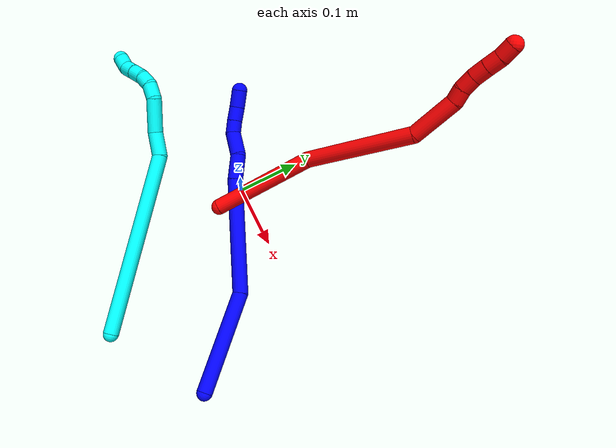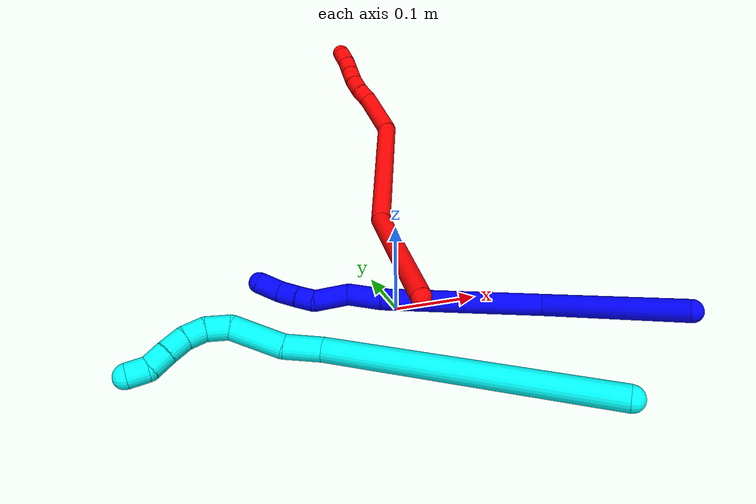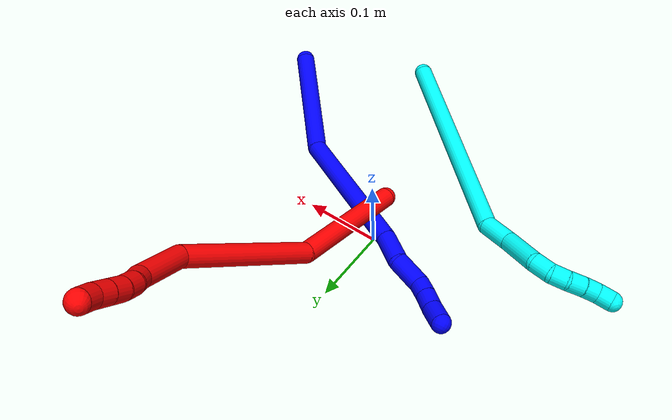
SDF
<sdf version="1.7">
 <world name="default">
  <model name="photoneo_s_sensor">
   <static>1</static>
   <pose>0 0 2 1.57079 1.57079 3.14159</pose>
   <link name="link">
    <inertial><mass>0.1</mass></inertial>
    <sensor name="sensor" type="depth">
     <update_rate>30</update_rate>
     <camera>
      <horizontal_fov>1.22</horizontal_fov>
      <image><width>1920</width><height>1200</height><format>B8G8R8</format></image>
      <clip><near>0.1</near><far>4</far></clip>
      <depth_camera><output>points</output></depth_camera>
     </camera>
     <plugin name="camera_plugin" filename="libgazebo_ros_depth_camera.so">
      <baseline>0.2</baseline>
      <alwaysOn>1</alwaysOn>
      <updateRate>0.0</updateRate>
      <cameraName>camera_ir</cameraName>
      <imageTopicName>/camera/color/image_raw</imageTopicName>
      <cameraInfoTopicName>/camera/color/camera_info</cameraInfoTopicName>
      <depthImageTopicName>/camera/depth/image_raw</depthImageTopicName>
      <depthImageCameraInfoTopicName>/camera/depth/camera_info</depthImageCameraInfoTopicName>
      <pointCloudTopicName>/camera/depth/points</pointCloudTopicName>
      <frameName>fr_optical</frameName>
      <pointCloudCutoff>0.1</pointCloudCutoff>
      <pointCloudCutoffMax>2.0</pointCloudCutoffMax>
      <distortionK1>0</distortionK1>
      <distortionK2>0</distortionK2>
      <distortionK3>0</distortionK3>
      <distortionT1>0</distortionT1>
      <distortionT2>0</distortionT2>
      <CxPrime>0</CxPrime>
      <Cx>0</Cx>
      <Cy>0</Cy>
      <focalLength>0</focalLength>
      <hackBaseline>0</hackBaseline>
     </plugin>
    </sensor>
   </link>
  </model>
  <model name="bin">
   <static>1</static>
   <link name="bottom">
    <collision name="collision-bottom">
     <pose>0 0 -0.01 0 -0 0</pose>
     <geometry><box><size>0.8 0.6 0.02</size></box></geometry>
     <surface>
      <friction><ode><mu>100</mu><mu2>100</mu2></ode></friction>
      <contact><collide_bitmask>65535</collide_bitmask></contact>
     </surface>
    </collision>
   </link>
   <link name="west_wall">
    <collision name="collision-west_wall">
     <pose>-0.41 0 0.1 0 -0 0</pose>
     <geometry><box><size>0.02 0.6 0.2</size></box></geometry>
     <surface>
      <friction><ode><mu>100</mu><mu2>100</mu2></ode></friction>
      <contact><collide_bitmask>65535</collide_bitmask></contact>
     </surface>
    </collision>
   </link>
   <link name="east_wall">
    <collision name="collision-east_wall">
     <pose>0.41 0 0.1 0 -0 0</pose>
     <geometry><box><size>0.02 0.6 0.2</size></box></geometry>
     <surface>
      <friction><ode><mu>100</mu><mu2>100</mu2></ode></friction>
      <contact><collide_bitmask>65535</collide_bitmask></contact>
     </surface>
    </collision>
   </link>
   <link name="south_wall">
    <collision name="collision-south_wall">
     <pose>0 -0.31 0.1 0 -0 0</pose>
     <geometry><box><size>0.8 0.02 0.2</size></box></geometry>
     <surface>
      <friction><ode><mu>100</mu><mu2>100</mu2></ode></friction>
      <contact><collide_bitmask>65535</collide_bitmask></contact>
     </surface>
    </collision>
   </link>
   <link name="north_wall">
    <collision name="collision-north_wall">
     <pose>0 0.31 0.1 0 -0 0</pose>
     <geometry><box><size>0.8 0.02 0.2</size></box></geometry>
     <surface>
      <friction><ode><mu>100</mu><mu2>100</mu2></ode></friction>
      <contact><collide_bitmask>65535</collide_bitmask></contact>
     </surface>
    </collision>
   </link>
  </model>
  <model name="1">
   <static>0</static>
   <link name="1">
    <collision name="collision-cylinder-e_1_1_4">
     <pose>-0.051967 -0.001839 0.062502 0.029412 -0.693413 -0.010627</pose>
     <geometry><cylinder><radius>0.0125</radius><length>0.162609</length></cylinder></geometry>
     <surface>
      <friction><ode><mu>1.16</mu><mu2>1.16</mu2><slip1>0</slip1><slip2>0</slip2></ode></friction>
      <contact><ode><kp>1e+06</kp><kd>1</kd><max_vel>0</max_vel><min_depth>0.001</min_depth></ode></contact>
     </surface>
    </collision>
    <visual name="visual-cylinder-e_1_1_4">
     <pose>-0.051967 -0.001839 0.062502 0.029412 -0.693413 -0.010627</pose>
     <geometry><cylinder><radius>0.0125</radius><length>0.162609</length></cylinder></geometry>
     <material><ambient>0 0 1 1</ambient></material>
    </visual>
    <collision name="collision-cylinder-e_2_4_5">
     <pose>-0.186599 1.3e-05 0.166472 -0.088771 -1.10425 0.054708</pose>
     <geometry><cylinder><radius>0.0125</radius><length>0.185114</length></cylinder></geometry>
     <surface>
      <friction><ode><mu>1.16</mu><mu2>1.16</mu2><slip1>0</slip1><slip2>0</slip2></ode></friction>
      <contact><ode><kp>1e+06</kp><kd>1</kd><max_vel>0</max_vel><min_depth>0.001</min_depth></ode></contact>
     </surface>
    </collision>
    <visual name="visual-cylinder-e_2_4_5">
     <pose>-0.186599 1.3e-05 0.166472 -0.088771 -1.10425 0.054708</pose>
     <geometry><cylinder><radius>0.0125</radius><length>0.185114</length></cylinder></geometry>
     <material><ambient>0 0 1 1</ambient></material>
    </visual>
    <collision name="collision-cylinder-e_3_5_6">
     <pose>-0.286252 0.002013 0.219151 0.149737 -0.982278 -0.080194</pose>
     <geometry><cylinder><radius>0.0125</radius><length>0.040847</length></cylinder></geometry>
     <surface>
      <friction><ode><mu>1.16</mu><mu2>1.16</mu2><slip1>0</slip1><slip2>0</slip2></ode></friction>
      <contact><ode><kp>1e+06</kp><kd>1</kd><max_vel>0</max_vel><min_depth>0.001</min_depth></ode></contact>
     </surface>
    </collision>
    <visual name="visual-cylinder-e_3_5_6">
     <pose>-0.286252 0.002013 0.219151 0.149737 -0.982278 -0.080194</pose>
     <geometry><cylinder><radius>0.0125</radius><length>0.040847</length></cylinder></geometry>
     <material><ambient>0 0 1 1</ambient></material>
    </visual>
    <collision name="collision-cylinder-e_4_6_7">
     <pose>-0.320891 0.005747 0.237857 -0.626591 -1.08798 0.387008</pose>
     <geometry><cylinder><radius>0.0125</radius><length>0.039858</length></cylinder></geometry>
     <surface>
      <friction><ode><mu>1.16</mu><mu2>1.16</mu2><slip1>0</slip1><slip2>0</slip2></ode></friction>
      <contact><ode><kp>1e+06</kp><kd>1</kd><max_vel>0</max_vel><min_depth>0.001</min_depth></ode></contact>
     </surface>
    </collision>
    <visual name="visual-cylinder-e_4_6_7">
     <pose>-0.320891 0.005747 0.237857 -0.626591 -1.08798 0.387008</pose>
     <geometry><cylinder><radius>0.0125</radius><length>0.039858</length></cylinder></geometry>
     <material><ambient>0 0 1 1</ambient></material>
    </visual>
    <collision name="collision-cylinder-e_5_7_8">
     <pose>-0.347337 0.009443 0.250601 0.318325 -1.00977 -0.176963</pose>
     <geometry><cylinder><radius>0.0125</radius><length>0.020776</length></cylinder></geometry>
     <surface>
      <friction><ode><mu>1.16</mu><mu2>1.16</mu2><slip1>0</slip1><slip2>0</slip2></ode></friction>
      <contact><ode><kp>1e+06</kp><kd>1</kd><max_vel>0</max_vel><min_depth>0.001</min_depth></ode></contact>
     </surface>
    </collision>
    <visual name="visual-cylinder-e_5_7_8">
     <pose>-0.347337 0.009443 0.250601 0.318325 -1.00977 -0.176963</pose>
     <geometry><cylinder><radius>0.0125</radius><length>0.020776</length></cylinder></geometry>
     <material><ambient>0 0 1 1</ambient></material>
    </visual>
    <collision name="collision-cylinder-e_6_8_9">
     <pose>-0.36529 0.005423 0.261981 0.357511 -0.950277 -0.185372</pose>
     <geometry><cylinder><radius>0.0125</radius><length>0.022511</length></cylinder></geometry>
     <surface>
      <friction><ode><mu>1.16</mu><mu2>1.16</mu2><slip1>0</slip1><slip2>0</slip2></ode></friction>
      <contact><ode><kp>1e+06</kp><kd>1</kd><max_vel>0</max_vel><min_depth>0.001</min_depth></ode></contact>
     </surface>
    </collision>
    <visual name="visual-cylinder-e_6_8_9">
     <pose>-0.36529 0.005423 0.261981 0.357511 -0.950277 -0.185372</pose>
     <geometry><cylinder><radius>0.0125</radius><length>0.022511</length></cylinder></geometry>
     <material><ambient>0 0 1 1</ambient></material>
    </visual>
    <collision name="collision-cylinder-e_7_9_2">
     <pose>-0.386334 -0.001338 0.274334 0.622998 -0.998262 -0.347532</pose>
     <geometry><cylinder><radius>0.0125</radius><length>0.028286</length></cylinder></geometry>
     <surface>
      <friction><ode><mu>1.16</mu><mu2>1.16</mu2><slip1>0</slip1><slip2>0</slip2></ode></friction>
      <contact><ode><kp>1e+06</kp><kd>1</kd><max_vel>0</max_vel><min_depth>0.001</min_depth></ode></contact>
     </surface>
    </collision>
    <visual name="visual-cylinder-e_7_9_2">
     <pose>-0.386334 -0.001338 0.274334 0.622998 -0.998262 -0.347532</pose>
     <geometry><cylinder><radius>0.0125</radius><length>0.028286</length></cylinder></geometry>
     <material><ambient>0 0 1 1</ambient></material>
    </visual>
    <collision name="collision-sphere-2">
     <pose>-0.398222 -0.005809 0.280557 0 -0 0</pose>
     <geometry><sphere><radius>0.0125</radius></sphere></geometry>
     <surface>
      <friction><ode><mu>1.16</mu><mu2>1.16</mu2><slip1>0</slip1><slip2>0</slip2></ode></friction>
      <contact><ode><kp>1e+06</kp><kd>1</kd><max_vel>0</max_vel><min_depth>0.001</min_depth></ode></contact>
     </surface>
    </collision>
    <visual name="visual-sphere-2">
     <pose>-0.398222 -0.005809 0.280557 0 -0 0</pose>
     <geometry><sphere><radius>0.0125</radius></sphere></geometry>
     <material><ambient>0 0 1 1</ambient></material>
    </visual>
    <collision name="collision-sphere-9">
     <pose>-0.374447 0.003133 0.268111 0 -0 0</pose>
     <geometry><sphere><radius>0.0125</radius></sphere></geometry>
     <surface>
      <friction><ode><mu>1.16</mu><mu2>1.16</mu2><slip1>0</slip1><slip2>0</slip2></ode></friction>
      <contact><ode><kp>1e+06</kp><kd>1</kd><max_vel>0</max_vel><min_depth>0.001</min_depth></ode></contact>
     </surface>
    </collision>
    <visual name="visual-sphere-9">
     <pose>-0.374447 0.003133 0.268111 0 -0 0</pose>
     <geometry><sphere><radius>0.0125</radius></sphere></geometry>
     <material><ambient>0 0 1 1</ambient></material>
    </visual>
    <collision name="collision-sphere-4">
     <pose>-0.103934 -0.003678 0.125003 0 -0 0</pose>
     <geometry><sphere><radius>0.0125</radius></sphere></geometry>
     <surface>
      <friction><ode><mu>1.16</mu><mu2>1.16</mu2><slip1>0</slip1><slip2>0</slip2></ode></friction>
      <contact><ode><kp>1e+06</kp><kd>1</kd><max_vel>0</max_vel><min_depth>0.001</min_depth></ode></contact>
     </surface>
    </collision>
    <visual name="visual-sphere-4">
     <pose>-0.103934 -0.003678 0.125003 0 -0 0</pose>
     <geometry><sphere><radius>0.0125</radius></sphere></geometry>
     <material><ambient>0 0 1 1</ambient></material>
    </visual>
    <collision name="collision-sphere-1">
     <geometry><sphere><radius>0.0125</radius></sphere></geometry>
     <surface>
      <friction><ode><mu>1.16</mu><mu2>1.16</mu2><slip1>0</slip1><slip2>0</slip2></ode></friction>
      <contact><ode><kp>1e+06</kp><kd>1</kd><max_vel>0</max_vel><min_depth>0.001</min_depth></ode></contact>
     </surface>
    </collision>
    <visual name="visual-sphere-1">
     <geometry><sphere><radius>0.0125</radius></sphere></geometry>
     <material><ambient>0 0 1 1</ambient></material>
    </visual>
    <collision name="collision-sphere-8">
     <pose>-0.356133 0.007713 0.25585 0 -0 0</pose>
     <geometry><sphere><radius>0.0125</radius></sphere></geometry>
     <surface>
      <friction><ode><mu>1.16</mu><mu2>1.16</mu2><slip1>0</slip1><slip2>0</slip2></ode></friction>
      <contact><ode><kp>1e+06</kp><kd>1</kd><max_vel>0</max_vel><min_depth>0.001</min_depth></ode></contact>
     </surface>
    </collision>
    <visual name="visual-sphere-8">
     <pose>-0.356133 0.007713 0.25585 0 -0 0</pose>
     <geometry><sphere><radius>0.0125</radius></sphere></geometry>
     <material><ambient>0 0 1 1</ambient></material>
    </visual>
    <collision name="collision-sphere-5">
     <pose>-0.269265 0.003704 0.20794 0 -0 0</pose>
     <geometry><sphere><radius>0.0125</radius></sphere></geometry>
     <surface>
      <friction><ode><mu>1.16</mu><mu2>1.16</mu2><slip1>0</slip1><slip2>0</slip2></ode></friction>
      <contact><ode><kp>1e+06</kp><kd>1</kd><max_vel>0</max_vel><min_depth>0.001</min_depth></ode></contact>
     </surface>
    </collision>
    <visual name="visual-sphere-5">
     <pose>-0.269265 0.003704 0.20794 0 -0 0</pose>
     <geometry><sphere><radius>0.0125</radius></sphere></geometry>
     <material><ambient>0 0 1 1</ambient></material>
    </visual>
    <collision name="collision-sphere-6">
     <pose>-0.30324 0.000322 0.230362 0 -0 0</pose>
     <geometry><sphere><radius>0.0125</radius></sphere></geometry>
     <surface>
      <friction><ode><mu>1.16</mu><mu2>1.16</mu2><slip1>0</slip1><slip2>0</slip2></ode></friction>
      <contact><ode><kp>1e+06</kp><kd>1</kd><max_vel>0</max_vel><min_depth>0.001</min_depth></ode></contact>
     </surface>
    </collision>
    <visual name="visual-sphere-6">
     <pose>-0.30324 0.000322 0.230362 0 -0 0</pose>
     <geometry><sphere><radius>0.0125</radius></sphere></geometry>
     <material><ambient>0 0 1 1</ambient></material>
    </visual>
    <collision name="collision-sphere-7">
     <pose>-0.338542 0.011173 0.245352 0 -0 0</pose>
     <geometry><sphere><radius>0.0125</radius></sphere></geometry>
     <surface>
      <friction><ode><mu>1.16</mu><mu2>1.16</mu2><slip1>0</slip1><slip2>0</slip2></ode></friction>
      <contact><ode><kp>1e+06</kp><kd>1</kd><max_vel>0</max_vel><min_depth>0.001</min_depth></ode></contact>
     </surface>
    </collision>
    <visual name="visual-sphere-7">
     <pose>-0.338542 0.011173 0.245352 0 -0 0</pose>
     <geometry><sphere><radius>0.0125</radius></sphere></geometry>
     <material><ambient>0 0 1 1</ambient></material>
    </visual>
    <inertial>
     <pose>-0.187684 0.00059 0.15655 0 -0 0</pose>
     <mass>0.5</mass>
     <inertia>
      <ixx>0.000511</ixx>
      <ixy>0</ixy>
      <ixz>0</ixz>
      <iyy>0.000929</iyy>
      <iyz>0</iyz>
      <izz>0.000738</izz>
     </inertia>
    </inertial>
   </link>
   <pose>0.263098 -0.193046 0.033411 -2.02962 0.277411 -0.021365</pose>
  </model>
  <model name="2">
   <static>0</static>
   <link name="2">
    <collision name="collision-cylinder-e_1_1_4">
     <pose>-0.017792 0.062116 0.047657 -0.916359 -0.223461 0.110556</pose>
     <geometry><cylinder><radius>0.0125</radius><length>0.160577</length></cylinder></geometry>
     <surface>
      <friction><ode><mu>1.16</mu><mu2>1.16</mu2><slip1>0</slip1><slip2>0</slip2></ode></friction>
      <contact><ode><kp>1e+06</kp><kd>1</kd><max_vel>0</max_vel><min_depth>0.001</min_depth></ode></contact>
     </surface>
    </collision>
    <visual name="visual-cylinder-e_1_1_4">
     <pose>-0.017792 0.062116 0.047657 -0.916359 -0.223461 0.110556</pose>
     <geometry><cylinder><radius>0.0125</radius><length>0.160577</length></cylinder></geometry>
     <material><ambient>1 0 0 1</ambient></material>
    </visual>
    <collision name="collision-cylinder-e_2_4_5">
     <pose>-0.024696 0.202584 0.126775 -1.18897 0.128255 -0.086775</pose>
     <geometry><cylinder><radius>0.0125</radius><length>0.170261</length></cylinder></geometry>
     <surface>
      <friction><ode><mu>1.16</mu><mu2>1.16</mu2><slip1>0</slip1><slip2>0</slip2></ode></friction>
      <contact><ode><kp>1e+06</kp><kd>1</kd><max_vel>0</max_vel><min_depth>0.001</min_depth></ode></contact>
     </surface>
    </collision>
    <visual name="visual-cylinder-e_2_4_5">
     <pose>-0.024696 0.202584 0.126775 -1.18897 0.128255 -0.086775</pose>
     <geometry><cylinder><radius>0.0125</radius><length>0.170261</length></cylinder></geometry>
     <material><ambient>1 0 0 1</ambient></material>
    </visual>
    <collision name="collision-cylinder-e_3_5_6">
     <pose>-0.012119 0.30346 0.18373 -0.723624 0.0496 -0.018776</pose>
     <geometry><cylinder><radius>0.0125</radius><length>0.068125</length></cylinder></geometry>
     <surface>
      <friction><ode><mu>1.16</mu><mu2>1.16</mu2><slip1>0</slip1><slip2>0</slip2></ode></friction>
      <contact><ode><kp>1e+06</kp><kd>1</kd><max_vel>0</max_vel><min_depth>0.001</min_depth></ode></contact>
     </surface>
    </collision>
    <visual name="visual-cylinder-e_3_5_6">
     <pose>-0.012119 0.30346 0.18373 -0.723624 0.0496 -0.018776</pose>
     <geometry><cylinder><radius>0.0125</radius><length>0.068125</length></cylinder></geometry>
     <material><ambient>1 0 0 1</ambient></material>
    </visual>
    <collision name="collision-cylinder-e_4_6_7">
     <pose>-0.008373 0.329733 0.218356 -0.389467 0.205489 -0.040667</pose>
     <geometry><cylinder><radius>0.0125</radius><length>0.020164</length></cylinder></geometry>
     <surface>
      <friction><ode><mu>1.16</mu><mu2>1.16</mu2><slip1>0</slip1><slip2>0</slip2></ode></friction>
      <contact><ode><kp>1e+06</kp><kd>1</kd><max_vel>0</max_vel><min_depth>0.001</min_depth></ode></contact>
     </surface>
    </collision>
    <visual name="visual-cylinder-e_4_6_7">
     <pose>-0.008373 0.329733 0.218356 -0.389467 0.205489 -0.040667</pose>
     <geometry><cylinder><radius>0.0125</radius><length>0.020164</length></cylinder></geometry>
     <material><ambient>1 0 0 1</ambient></material>
    </visual>
    <collision name="collision-cylinder-e_5_7_8">
     <pose>-0.004682 0.339429 0.235508 -0.638137 0.162217 -0.053694</pose>
     <geometry><cylinder><radius>0.0125</radius><length>0.020237</length></cylinder></geometry>
     <surface>
      <friction><ode><mu>1.16</mu><mu2>1.16</mu2><slip1>0</slip1><slip2>0</slip2></ode></friction>
      <contact><ode><kp>1e+06</kp><kd>1</kd><max_vel>0</max_vel><min_depth>0.001</min_depth></ode></contact>
     </surface>
    </collision>
    <visual name="visual-cylinder-e_5_7_8">
     <pose>-0.004682 0.339429 0.235508 -0.638137 0.162217 -0.053694</pose>
     <geometry><cylinder><radius>0.0125</radius><length>0.020237</length></cylinder></geometry>
     <material><ambient>1 0 0 1</ambient></material>
    </visual>
    <collision name="collision-cylinder-e_6_8_9">
     <pose>-0.000931 0.352501 0.250564 -0.791569 0.208348 -0.087315</pose>
     <geometry><cylinder><radius>0.0125</radius><length>0.020467</length></cylinder></geometry>
     <surface>
      <friction><ode><mu>1.16</mu><mu2>1.16</mu2><slip1>0</slip1><slip2>0</slip2></ode></friction>
      <contact><ode><kp>1e+06</kp><kd>1</kd><max_vel>0</max_vel><min_depth>0.001</min_depth></ode></contact>
     </surface>
    </collision>
    <visual name="visual-cylinder-e_6_8_9">
     <pose>-0.000931 0.352501 0.250564 -0.791569 0.208348 -0.087315</pose>
     <geometry><cylinder><radius>0.0125</radius><length>0.020467</length></cylinder></geometry>
     <material><ambient>1 0 0 1</ambient></material>
    </visual>
    <collision name="collision-cylinder-e_7_9_10">
     <pose>0.00308 0.366851 0.264327 -0.82124 0.189552 -0.082726</pose>
     <geometry><cylinder><radius>0.0125</radius><length>0.020107</length></cylinder></geometry>
     <surface>
      <friction><ode><mu>1.16</mu><mu2>1.16</mu2><slip1>0</slip1><slip2>0</slip2></ode></friction>
      <contact><ode><kp>1e+06</kp><kd>1</kd><max_vel>0</max_vel><min_depth>0.001</min_depth></ode></contact>
     </surface>
    </collision>
    <visual name="visual-cylinder-e_7_9_10">
     <pose>0.00308 0.366851 0.264327 -0.82124 0.189552 -0.082726</pose>
     <geometry><cylinder><radius>0.0125</radius><length>0.020107</length></cylinder></geometry>
     <material><ambient>1 0 0 1</ambient></material>
    </visual>
    <collision name="collision-cylinder-e_8_10_2">
     <pose>0.007115 0.379866 0.278962 -0.631816 0.214992 -0.070514</pose>
     <geometry><cylinder><radius>0.0125</radius><length>0.020062</length></cylinder></geometry>
     <surface>
      <friction><ode><mu>1.16</mu><mu2>1.16</mu2><slip1>0</slip1><slip2>0</slip2></ode></friction>
      <contact><ode><kp>1e+06</kp><kd>1</kd><max_vel>0</max_vel><min_depth>0.001</min_depth></ode></contact>
     </surface>
    </collision>
    <visual name="visual-cylinder-e_8_10_2">
     <pose>0.007115 0.379866 0.278962 -0.631816 0.214992 -0.070514</pose>
     <geometry><cylinder><radius>0.0125</radius><length>0.020062</length></cylinder></geometry>
     <material><ambient>1 0 0 1</ambient></material>
    </visual>
    <collision name="collision-sphere-2">
     <pose>0.009255 0.385655 0.28687 0 -0 0</pose>
     <geometry><sphere><radius>0.0125</radius></sphere></geometry>
     <surface>
      <friction><ode><mu>1.16</mu><mu2>1.16</mu2><slip1>0</slip1><slip2>0</slip2></ode></friction>
      <contact><ode><kp>1e+06</kp><kd>1</kd><max_vel>0</max_vel><min_depth>0.001</min_depth></ode></contact>
     </surface>
    </collision>
    <visual name="visual-sphere-2">
     <pose>0.009255 0.385655 0.28687 0 -0 0</pose>
     <geometry><sphere><radius>0.0125</radius></sphere></geometry>
     <material><ambient>1 0 0 1</ambient></material>
    </visual>
    <collision name="collision-sphere-10">
     <pose>0.004975 0.374078 0.271054 0 -0 0</pose>
     <geometry><sphere><radius>0.0125</radius></sphere></geometry>
     <surface>
      <friction><ode><mu>1.16</mu><mu2>1.16</mu2><slip1>0</slip1><slip2>0</slip2></ode></friction>
      <contact><ode><kp>1e+06</kp><kd>1</kd><max_vel>0</max_vel><min_depth>0.001</min_depth></ode></contact>
     </surface>
    </collision>
    <visual name="visual-sphere-10">
     <pose>0.004975 0.374078 0.271054 0 -0 0</pose>
     <geometry><sphere><radius>0.0125</radius></sphere></geometry>
     <material><ambient>1 0 0 1</ambient></material>
    </visual>
    <collision name="collision-sphere-9">
     <pose>0.001186 0.359624 0.2576 0 -0 0</pose>
     <geometry><sphere><radius>0.0125</radius></sphere></geometry>
     <surface>
      <friction><ode><mu>1.16</mu><mu2>1.16</mu2><slip1>0</slip1><slip2>0</slip2></ode></friction>
      <contact><ode><kp>1e+06</kp><kd>1</kd><max_vel>0</max_vel><min_depth>0.001</min_depth></ode></contact>
     </surface>
    </collision>
    <visual name="visual-sphere-9">
     <pose>0.001186 0.359624 0.2576 0 -0 0</pose>
     <geometry><sphere><radius>0.0125</radius></sphere></geometry>
     <material><ambient>1 0 0 1</ambient></material>
    </visual>
    <collision name="collision-sphere-4">
     <pose>-0.035585 0.124232 0.095315 0 -0 0</pose>
     <geometry><sphere><radius>0.0125</radius></sphere></geometry>
     <surface>
      <friction><ode><mu>1.16</mu><mu2>1.16</mu2><slip1>0</slip1><slip2>0</slip2></ode></friction>
      <contact><ode><kp>1e+06</kp><kd>1</kd><max_vel>0</max_vel><min_depth>0.001</min_depth></ode></contact>
     </surface>
    </collision>
    <visual name="visual-sphere-4">
     <pose>-0.035585 0.124232 0.095315 0 -0 0</pose>
     <geometry><sphere><radius>0.0125</radius></sphere></geometry>
     <material><ambient>1 0 0 1</ambient></material>
    </visual>
    <collision name="collision-sphere-1">
     <geometry><sphere><radius>0.0125</radius></sphere></geometry>
     <surface>
      <friction><ode><mu>1.16</mu><mu2>1.16</mu2><slip1>0</slip1><slip2>0</slip2></ode></friction>
      <contact><ode><kp>1e+06</kp><kd>1</kd><max_vel>0</max_vel><min_depth>0.001</min_depth></ode></contact>
     </surface>
    </collision>
    <visual name="visual-sphere-1">
     <geometry><sphere><radius>0.0125</radius></sphere></geometry>
     <material><ambient>1 0 0 1</ambient></material>
    </visual>
    <collision name="collision-sphere-8">
     <pose>-0.003047 0.345377 0.243528 0 -0 0</pose>
     <geometry><sphere><radius>0.0125</radius></sphere></geometry>
     <surface>
      <friction><ode><mu>1.16</mu><mu2>1.16</mu2><slip1>0</slip1><slip2>0</slip2></ode></friction>
      <contact><ode><kp>1e+06</kp><kd>1</kd><max_vel>0</max_vel><min_depth>0.001</min_depth></ode></contact>
     </surface>
    </collision>
    <visual name="visual-sphere-8">
     <pose>-0.003047 0.345377 0.243528 0 -0 0</pose>
     <geometry><sphere><radius>0.0125</radius></sphere></geometry>
     <material><ambient>1 0 0 1</ambient></material>
    </visual>
    <collision name="collision-sphere-5">
     <pose>-0.013808 0.280935 0.158235 0 -0 0</pose>
     <geometry><sphere><radius>0.0125</radius></sphere></geometry>
     <surface>
      <friction><ode><mu>1.16</mu><mu2>1.16</mu2><slip1>0</slip1><slip2>0</slip2></ode></friction>
      <contact><ode><kp>1e+06</kp><kd>1</kd><max_vel>0</max_vel><min_depth>0.001</min_depth></ode></contact>
     </surface>
    </collision>
    <visual name="visual-sphere-5">
     <pose>-0.013808 0.280935 0.158235 0 -0 0</pose>
     <geometry><sphere><radius>0.0125</radius></sphere></geometry>
     <material><ambient>1 0 0 1</ambient></material>
    </visual>
    <collision name="collision-sphere-6">
     <pose>-0.01043 0.325985 0.209226 0 -0 0</pose>
     <geometry><sphere><radius>0.0125</radius></sphere></geometry>
     <surface>
      <friction><ode><mu>1.16</mu><mu2>1.16</mu2><slip1>0</slip1><slip2>0</slip2></ode></friction>
      <contact><ode><kp>1e+06</kp><kd>1</kd><max_vel>0</max_vel><min_depth>0.001</min_depth></ode></contact>
     </surface>
    </collision>
    <visual name="visual-sphere-6">
     <pose>-0.01043 0.325985 0.209226 0 -0 0</pose>
     <geometry><sphere><radius>0.0125</radius></sphere></geometry>
     <material><ambient>1 0 0 1</ambient></material>
    </visual>
    <collision name="collision-sphere-7">
     <pose>-0.006316 0.33348 0.227487 0 -0 0</pose>
     <geometry><sphere><radius>0.0125</radius></sphere></geometry>
     <surface>
      <friction><ode><mu>1.16</mu><mu2>1.16</mu2><slip1>0</slip1><slip2>0</slip2></ode></friction>
      <contact><ode><kp>1e+06</kp><kd>1</kd><max_vel>0</max_vel><min_depth>0.001</min_depth></ode></contact>
     </surface>
    </collision>
    <visual name="visual-sphere-7">
     <pose>-0.006316 0.33348 0.227487 0 -0 0</pose>
     <geometry><sphere><radius>0.0125</radius></sphere></geometry>
     <material><ambient>1 0 0 1</ambient></material>
    </visual>
    <inertial>
     <pose>-0.015931 0.201739 0.133925 0 -0 0</pose>
     <mass>0.5</mass>
     <inertia>
      <ixx>0.000791</ixx>
      <ixy>0</ixy>
      <ixz>0</ixz>
      <iyy>0.000437</iyy>
      <iyz>0</iyz>
      <izz>-0.000636</izz>
     </inertia>
    </inertial>
   </link>
   <pose>0.01361 -0.045989 0.030838 0.773926 -1.04603 -1.44545</pose>
  </model>
  <model name="3">
   <static>0</static>
   <link name="3">
    <collision name="collision-cylinder-e_1_1_4">
     <pose>-0.000447 0.001873 0.148899 -0.012576 -0.003005 1.9e-05</pose>
     <geometry><cylinder><radius>0.0125</radius><length>0.297823</length></cylinder></geometry>
     <surface>
      <friction><ode><mu>1.16</mu><mu2>1.16</mu2><slip1>0</slip1><slip2>0</slip2></ode></friction>
      <contact><ode><kp>1e+06</kp><kd>1</kd><max_vel>0</max_vel><min_depth>0.001</min_depth></ode></contact>
     </surface>
    </collision>
    <visual name="visual-cylinder-e_1_1_4">
     <pose>-0.000447 0.001873 0.148899 -0.012576 -0.003005 1.9e-05</pose>
     <geometry><cylinder><radius>0.0125</radius><length>0.297823</length></cylinder></geometry>
     <material><ambient>0.003922 1 0.996078 1</ambient></material>
    </visual>
    <collision name="collision-cylinder-e_2_4_5">
     <pose>-0.006371 -0.002722 0.315665 0.34729 -0.280607 -0.049537</pose>
     <geometry><cylinder><radius>0.0125</radius><length>0.03955</length></cylinder></geometry>
     <surface>
      <friction><ode><mu>1.16</mu><mu2>1.16</mu2><slip1>0</slip1><slip2>0</slip2></ode></friction>
      <contact><ode><kp>1e+06</kp><kd>1</kd><max_vel>0</max_vel><min_depth>0.001</min_depth></ode></contact>
     </surface>
    </collision>
    <visual name="visual-cylinder-e_2_4_5">
     <pose>-0.006371 -0.002722 0.315665 0.34729 -0.280607 -0.049537</pose>
     <geometry><cylinder><radius>0.0125</radius><length>0.03955</length></cylinder></geometry>
     <material><ambient>0.003922 1 0.996078 1</ambient></material>
    </visual>
    <collision name="collision-cylinder-e_3_5_6">
     <pose>-0.012299 -0.020286 0.358812 0.413639 -0.016329 -0.003426</pose>
     <geometry><cylinder><radius>0.0125</radius><length>0.055222</length></cylinder></geometry>
     <surface>
      <friction><ode><mu>1.16</mu><mu2>1.16</mu2><slip1>0</slip1><slip2>0</slip2></ode></friction>
      <contact><ode><kp>1e+06</kp><kd>1</kd><max_vel>0</max_vel><min_depth>0.001</min_depth></ode></contact>
     </surface>
    </collision>
    <visual name="visual-cylinder-e_3_5_6">
     <pose>-0.012299 -0.020286 0.358812 0.413639 -0.016329 -0.003426</pose>
     <geometry><cylinder><radius>0.0125</radius><length>0.055222</length></cylinder></geometry>
     <material><ambient>0.003922 1 0.996078 1</ambient></material>
    </visual>
    <collision name="collision-cylinder-e_4_6_7">
     <pose>-0.018087 -0.035023 0.394491 0.336753 -0.45105 -0.077959</pose>
     <geometry><cylinder><radius>0.0125</radius><length>0.024488</length></cylinder></geometry>
     <surface>
      <friction><ode><mu>1.16</mu><mu2>1.16</mu2><slip1>0</slip1><slip2>0</slip2></ode></friction>
      <contact><ode><kp>1e+06</kp><kd>1</kd><max_vel>0</max_vel><min_depth>0.001</min_depth></ode></contact>
     </surface>
    </collision>
    <visual name="visual-cylinder-e_4_6_7">
     <pose>-0.018087 -0.035023 0.394491 0.336753 -0.45105 -0.077959</pose>
     <geometry><cylinder><radius>0.0125</radius><length>0.024488</length></cylinder></geometry>
     <material><ambient>0.003922 1 0.996078 1</ambient></material>
    </visual>
    <collision name="collision-cylinder-e_5_7_8">
     <pose>-0.031531 -0.041266 0.410907 0.40817 -0.890912 -0.196998</pose>
     <geometry><cylinder><radius>0.0125</radius><length>0.020849</length></cylinder></geometry>
     <surface>
      <friction><ode><mu>1.16</mu><mu2>1.16</mu2><slip1>0</slip1><slip2>0</slip2></ode></friction>
      <contact><ode><kp>1e+06</kp><kd>1</kd><max_vel>0</max_vel><min_depth>0.001</min_depth></ode></contact>
     </surface>
    </collision>
    <visual name="visual-cylinder-e_5_7_8">
     <pose>-0.031531 -0.041266 0.410907 0.40817 -0.890912 -0.196998</pose>
     <geometry><cylinder><radius>0.0125</radius><length>0.020849</length></cylinder></geometry>
     <material><ambient>0.003922 1 0.996078 1</ambient></material>
    </visual>
    <collision name="collision-cylinder-e_6_8_9">
     <pose>-0.049464 -0.045241 0.420828 0.338124 -1.17206 -0.225655</pose>
     <geometry><cylinder><radius>0.0125</radius><length>0.021327</length></cylinder></geometry>
     <surface>
      <friction><ode><mu>1.16</mu><mu2>1.16</mu2><slip1>0</slip1><slip2>0</slip2></ode></friction>
      <contact><ode><kp>1e+06</kp><kd>1</kd><max_vel>0</max_vel><min_depth>0.001</min_depth></ode></contact>
     </surface>
    </collision>
    <visual name="visual-cylinder-e_6_8_9">
     <pose>-0.049464 -0.045241 0.420828 0.338124 -1.17206 -0.225655</pose>
     <geometry><cylinder><radius>0.0125</radius><length>0.021327</length></cylinder></geometry>
     <material><ambient>0.003922 1 0.996078 1</ambient></material>
    </visual>
    <collision name="collision-cylinder-e_7_9_10">
     <pose>-0.068901 -0.047151 0.428371 0.146692 -1.20544 -0.101039</pose>
     <geometry><cylinder><radius>0.0125</radius><length>0.020578</length></cylinder></geometry>
     <surface>
      <friction><ode><mu>1.16</mu><mu2>1.16</mu2><slip1>0</slip1><slip2>0</slip2></ode></friction>
      <contact><ode><kp>1e+06</kp><kd>1</kd><max_vel>0</max_vel><min_depth>0.001</min_depth></ode></contact>
     </surface>
    </collision>
    <visual name="visual-cylinder-e_7_9_10">
     <pose>-0.068901 -0.047151 0.428371 0.146692 -1.20544 -0.101039</pose>
     <geometry><cylinder><radius>0.0125</radius><length>0.020578</length></cylinder></geometry>
     <material><ambient>0.003922 1 0.996078 1</ambient></material>
    </visual>
    <collision name="collision-cylinder-e_8_10_2">
     <pose>-0.085138 -0.050167 0.439188 0.332375 -0.717349 -0.125599</pose>
     <geometry><cylinder><radius>0.0125</radius><length>0.020163</length></cylinder></geometry>
     <surface>
      <friction><ode><mu>1.16</mu><mu2>1.16</mu2><slip1>0</slip1><slip2>0</slip2></ode></friction>
      <contact><ode><kp>1e+06</kp><kd>1</kd><max_vel>0</max_vel><min_depth>0.001</min_depth></ode></contact>
     </surface>
    </collision>
    <visual name="visual-cylinder-e_8_10_2">
     <pose>-0.085138 -0.050167 0.439188 0.332375 -0.717349 -0.125599</pose>
     <geometry><cylinder><radius>0.0125</radius><length>0.020163</length></cylinder></geometry>
     <material><ambient>0.003922 1 0.996078 1</ambient></material>
    </visual>
    <collision name="collision-sphere-2">
     <pose>-0.091766 -0.052646 0.44637 0 -0 0</pose>
     <geometry><sphere><radius>0.0125</radius></sphere></geometry>
     <surface>
      <friction><ode><mu>1.16</mu><mu2>1.16</mu2><slip1>0</slip1><slip2>0</slip2></ode></friction>
      <contact><ode><kp>1e+06</kp><kd>1</kd><max_vel>0</max_vel><min_depth>0.001</min_depth></ode></contact>
     </surface>
    </collision>
    <visual name="visual-sphere-2">
     <pose>-0.091766 -0.052646 0.44637 0 -0 0</pose>
     <geometry><sphere><radius>0.0125</radius></sphere></geometry>
     <material><ambient>0.003922 1 0.996078 1</ambient></material>
    </visual>
    <collision name="collision-sphere-10">
     <pose>-0.078511 -0.047689 0.432007 0 -0 0</pose>
     <geometry><sphere><radius>0.0125</radius></sphere></geometry>
     <surface>
      <friction><ode><mu>1.16</mu><mu2>1.16</mu2><slip1>0</slip1><slip2>0</slip2></ode></friction>
      <contact><ode><kp>1e+06</kp><kd>1</kd><max_vel>0</max_vel><min_depth>0.001</min_depth></ode></contact>
     </surface>
    </collision>
    <visual name="visual-sphere-10">
     <pose>-0.078511 -0.047689 0.432007 0 -0 0</pose>
     <geometry><sphere><radius>0.0125</radius></sphere></geometry>
     <material><ambient>0.003922 1 0.996078 1</ambient></material>
    </visual>
    <collision name="collision-sphere-9">
     <pose>-0.059291 -0.046614 0.424734 0 -0 0</pose>
     <geometry><sphere><radius>0.0125</radius></sphere></geometry>
     <surface>
      <friction><ode><mu>1.16</mu><mu2>1.16</mu2><slip1>0</slip1><slip2>0</slip2></ode></friction>
      <contact><ode><kp>1e+06</kp><kd>1</kd><max_vel>0</max_vel><min_depth>0.001</min_depth></ode></contact>
     </surface>
    </collision>
    <visual name="visual-sphere-9">
     <pose>-0.059291 -0.046614 0.424734 0 -0 0</pose>
     <geometry><sphere><radius>0.0125</radius></sphere></geometry>
     <material><ambient>0.003922 1 0.996078 1</ambient></material>
    </visual>
    <collision name="collision-sphere-4">
     <pose>-0.000895 0.003745 0.297798 0 -0 0</pose>
     <geometry><sphere><radius>0.0125</radius></sphere></geometry>
     <surface>
      <friction><ode><mu>1.16</mu><mu2>1.16</mu2><slip1>0</slip1><slip2>0</slip2></ode></friction>
      <contact><ode><kp>1e+06</kp><kd>1</kd><max_vel>0</max_vel><min_depth>0.001</min_depth></ode></contact>
     </surface>
    </collision>
    <visual name="visual-sphere-4">
     <pose>-0.000895 0.003745 0.297798 0 -0 0</pose>
     <geometry><sphere><radius>0.0125</radius></sphere></geometry>
     <material><ambient>0.003922 1 0.996078 1</ambient></material>
    </visual>
    <collision name="collision-sphere-1">
     <geometry><sphere><radius>0.0125</radius></sphere></geometry>
     <surface>
      <friction><ode><mu>1.16</mu><mu2>1.16</mu2><slip1>0</slip1><slip2>0</slip2></ode></friction>
      <contact><ode><kp>1e+06</kp><kd>1</kd><max_vel>0</max_vel><min_depth>0.001</min_depth></ode></contact>
     </surface>
    </collision>
    <visual name="visual-sphere-1">
     <geometry><sphere><radius>0.0125</radius></sphere></geometry>
     <material><ambient>0.003922 1 0.996078 1</ambient></material>
    </visual>
    <collision name="collision-sphere-8">
     <pose>-0.039637 -0.043867 0.416923 0 -0 0</pose>
     <geometry><sphere><radius>0.0125</radius></sphere></geometry>
     <surface>
      <friction><ode><mu>1.16</mu><mu2>1.16</mu2><slip1>0</slip1><slip2>0</slip2></ode></friction>
      <contact><ode><kp>1e+06</kp><kd>1</kd><max_vel>0</max_vel><min_depth>0.001</min_depth></ode></contact>
     </surface>
    </collision>
    <visual name="visual-sphere-8">
     <pose>-0.039637 -0.043867 0.416923 0 -0 0</pose>
     <geometry><sphere><radius>0.0125</radius></sphere></geometry>
     <material><ambient>0.003922 1 0.996078 1</ambient></material>
    </visual>
    <collision name="collision-sphere-5">
     <pose>-0.011848 -0.009189 0.333532 0 -0 0</pose>
     <geometry><sphere><radius>0.0125</radius></sphere></geometry>
     <surface>
      <friction><ode><mu>1.16</mu><mu2>1.16</mu2><slip1>0</slip1><slip2>0</slip2></ode></friction>
      <contact><ode><kp>1e+06</kp><kd>1</kd><max_vel>0</max_vel><min_depth>0.001</min_depth></ode></contact>
     </surface>
    </collision>
    <visual name="visual-sphere-5">
     <pose>-0.011848 -0.009189 0.333532 0 -0 0</pose>
     <geometry><sphere><radius>0.0125</radius></sphere></geometry>
     <material><ambient>0.003922 1 0.996078 1</ambient></material>
    </visual>
    <collision name="collision-sphere-6">
     <pose>-0.01275 -0.031382 0.384091 0 -0 0</pose>
     <geometry><sphere><radius>0.0125</radius></sphere></geometry>
     <surface>
      <friction><ode><mu>1.16</mu><mu2>1.16</mu2><slip1>0</slip1><slip2>0</slip2></ode></friction>
      <contact><ode><kp>1e+06</kp><kd>1</kd><max_vel>0</max_vel><min_depth>0.001</min_depth></ode></contact>
     </surface>
    </collision>
    <visual name="visual-sphere-6">
     <pose>-0.01275 -0.031382 0.384091 0 -0 0</pose>
     <geometry><sphere><radius>0.0125</radius></sphere></geometry>
     <material><ambient>0.003922 1 0.996078 1</ambient></material>
    </visual>
    <collision name="collision-sphere-7">
     <pose>-0.023424 -0.038664 0.404892 0 -0 0</pose>
     <geometry><sphere><radius>0.0125</radius></sphere></geometry>
     <surface>
      <friction><ode><mu>1.16</mu><mu2>1.16</mu2><slip1>0</slip1><slip2>0</slip2></ode></friction>
      <contact><ode><kp>1e+06</kp><kd>1</kd><max_vel>0</max_vel><min_depth>0.001</min_depth></ode></contact>
     </surface>
    </collision>
    <visual name="visual-sphere-7">
     <pose>-0.023424 -0.038664 0.404892 0 -0 0</pose>
     <geometry><sphere><radius>0.0125</radius></sphere></geometry>
     <material><ambient>0.003922 1 0.996078 1</ambient></material>
    </visual>
    <inertial>
     <pose>-0.012708 -0.01067 0.243034 0 -0 0</pose>
     <mass>0.5</mass>
     <inertia>
      <ixx>0.002233</ixx>
      <ixy>0</ixy>
      <ixz>0</ixz>
      <iyy>0.002237</iyy>
      <iyz>0</iyz>
      <izz>3.2e-05</izz>
     </inertia>
    </inertial>
   </link>
   <pose>0.117086 -0.288551 0.013084 -1.562 -0.566981 0.867018</pose>
  </model>
 </world>
</sdf>
